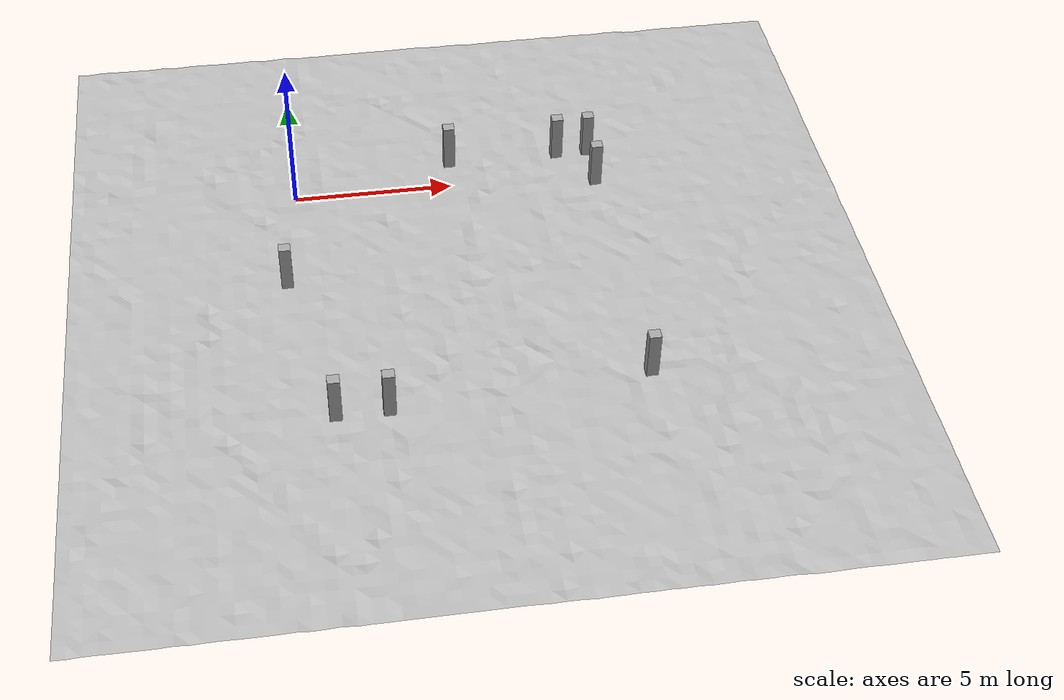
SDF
<sdf version="1.4">
 <world name="default">
  <scene><ambient>0.5 0.5 0.5 1</ambient><background>0.5 0.5 0.5 1</background><shadows>false</shadows></scene>
  <physics type="ode">
   <gravity>0 0 -9.81</gravity>
   <ode>
    <solver><type>quick</type><iters>500</iters><sor>1.3</sor></solver>
    <constraints>
     <cfm>0.0</cfm>
     <erp>0.2</erp>
     <contact_max_correcting_vel>10</contact_max_correcting_vel>
     <contact_surface_layer>0.001</contact_surface_layer>
    </constraints>
   </ode>
   <max_step_size>0.001</max_step_size>
  </physics>
  <light type="directional" name="directional_light_1">
   <pose>0 20 20 0.1 0.1 0</pose>
   <diffuse>1 1 1 1</diffuse>
   <specular>1 1 1 1</specular>
   <attenuation><range>300</range></attenuation>
   <direction>0.1 0.1 -1</direction>
   <cast_shadows>false</cast_shadows>
  </light>
  <model name="landscape">
   <link name="landscape_link">
    <pose>5 -5 0.5 0 0 0</pose>
    <collision name="landscape_collision">
     <geometry>
      <mesh><uri>model://worlds/models/minefield_unregular_hard.dae</uri><scale>1 1 0.4</scale></mesh>
     </geometry>
    </collision>
    <visual name="landscape">
     <geometry>
      <mesh><uri>model://worlds/models/minefield_unregular_hard.dae</uri><scale>1 1 0.4</scale></mesh>
     </geometry>
     <cast_shadows>false</cast_shadows>
    </visual>
   </link>
   <static>true</static>
  </model>
  <model name="cornerstone1">
   <static>true</static>
   <link name="cornerstone_link1">
    <pose>5 0.5 0 0 0 0</pose>
    <collision name="cornerstone_collision1">
     <geometry><mesh><uri>model://worlds/models/cornerstone.dae</uri><scale>0.5 0.5 0.28</scale></mesh></geometry>
    </collision>
    <visual name="cornerstone_visual1">
     <geometry><mesh><uri>model://worlds/models/cornerstone.dae</uri><scale>0.5 0.5 0.28</scale></mesh></geometry>
     <cast_shadows>false</cast_shadows>
    </visual>
   </link>
  </model>
  <model name="cornerstone2">
   <static>true</static>
   <link name="cornerstone_link2">
    <pose>8.5 0.5 0 0 0 0</pose>
    <collision name="cornerstone_collision2">
     <geometry><mesh><uri>model://worlds/models/cornerstone.dae</uri><scale>0.5 0.5 0.28</scale></mesh></geometry>
    </collision>
    <visual name="cornerstone_visual2">
     <geometry><mesh><uri>model://worlds/models/cornerstone.dae</uri><scale>0.5 0.5 0.28</scale></mesh></geometry>
     <cast_shadows>false</cast_shadows>
    </visual>
   </link>
  </model>
  <model name="cornerstone3">
   <static>true</static>
   <link name="cornerstone_link3">
    <pose>9.5 0.5 0 0 0 0</pose>
    <collision name="cornerstone_collision3">
     <geometry><mesh><uri>model://worlds/models/cornerstone.dae</uri><scale>0.5 0.5 0.28</scale></mesh></geometry>
    </collision>
    <visual name="cornerstone_visual3">
     <geometry><mesh><uri>model://worlds/models/cornerstone.dae</uri><scale>0.5 0.5 0.28</scale></mesh></geometry>
     <cast_shadows>false</cast_shadows>
    </visual>
   </link>
  </model>
  <model name="cornerstone4">
   <static>true</static>
   <link name="cornerstone_link4">
    <pose>9.5 -1 0 0 0 0</pose>
    <collision name="cornerstone_collision4">
     <geometry><mesh><uri>model://worlds/models/cornerstone.dae</uri><scale>0.5 0.5 0.28</scale></mesh></geometry>
    </collision>
    <visual name="cornerstone_visual4">
     <geometry><mesh><uri>model://worlds/models/cornerstone.dae</uri><scale>0.5 0.5 0.28</scale></mesh></geometry>
     <cast_shadows>false</cast_shadows>
    </visual>
   </link>
  </model>
  <model name="cornerstone5">
   <static>true</static>
   <link name="cornerstone_link5">
    <pose>-0.5 -4.5 0 0 0 0</pose>
    <collision name="cornerstone_collision5">
     <geometry><mesh><uri>model://worlds/models/cornerstone.dae</uri><scale>0.5 0.5 0.28</scale></mesh></geometry>
    </collision>
    <visual name="cornerstone_visual5">
     <geometry><mesh><uri>model://worlds/models/cornerstone.dae</uri><scale>0.5 0.5 0.28</scale></mesh></geometry>
     <cast_shadows>false</cast_shadows>
    </visual>
   </link>
  </model>
  <model name="cornerstone6">
   <static>true</static>
   <link name="cornerstone_link6">
    <pose>9.5 -9.5 0 0 0 0</pose>
    <collision name="cornerstone_collision6">
     <geometry><mesh><uri>model://worlds/models/cornerstone.dae</uri><scale>0.5 0.5 0.28</scale></mesh></geometry>
    </collision>
    <visual name="cornerstone_visual6">
     <geometry><mesh><uri>model://worlds/models/cornerstone.dae</uri><scale>0.5 0.5 0.28</scale></mesh></geometry>
     <cast_shadows>false</cast_shadows>
    </visual>
   </link>
  </model>
  <model name="cornerstone7">
   <static>true</static>
   <link name="cornerstone_link7">
    <pose>2 -10 0 0 0 0</pose>
    <collision name="cornerstone_collision7">
     <geometry><mesh><uri>model://worlds/models/cornerstone.dae</uri><scale>0.5 0.5 0.28</scale></mesh></geometry>
    </collision>
    <visual name="cornerstone_visual7">
     <geometry><mesh><uri>model://worlds/models/cornerstone.dae</uri><scale>0.5 0.5 0.28</scale></mesh></geometry>
     <cast_shadows>false</cast_shadows>
    </visual>
   </link>
  </model>
  <model name="cornerstone8">
   <static>true</static>
   <link name="cornerstone_link8">
    <pose>0.5 -10 0 0 0 0</pose>
    <collision name="cornerstone_collision8">
     <geometry><mesh><uri>model://worlds/models/cornerstone.dae</uri><scale>0.5 0.5 0.28</scale></mesh></geometry>
    </collision>
    <visual name="cornerstone_visual8">
     <geometry><mesh><uri>model://worlds/models/cornerstone.dae</uri><scale>0.5 0.5 0.28</scale></mesh></geometry>
     <cast_shadows>false</cast_shadows>
    </visual>
   </link>
  </model>
 </world>
</sdf>
